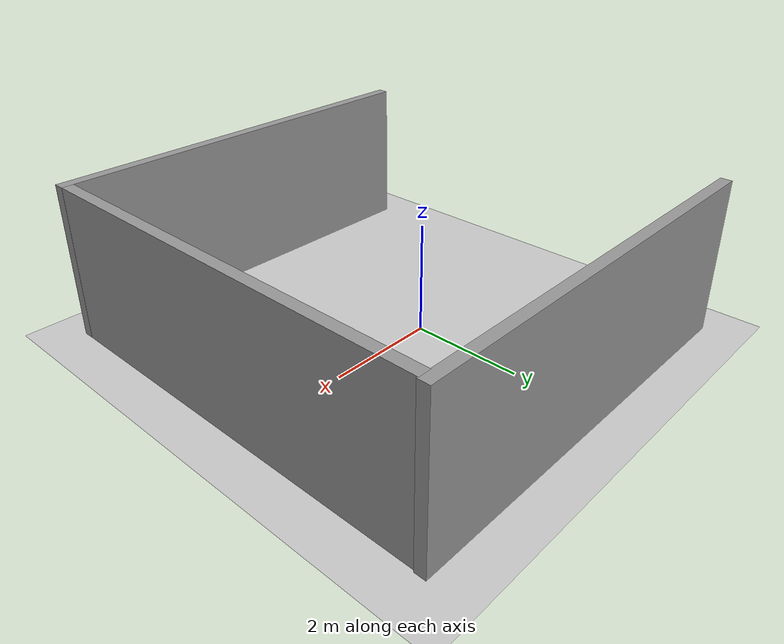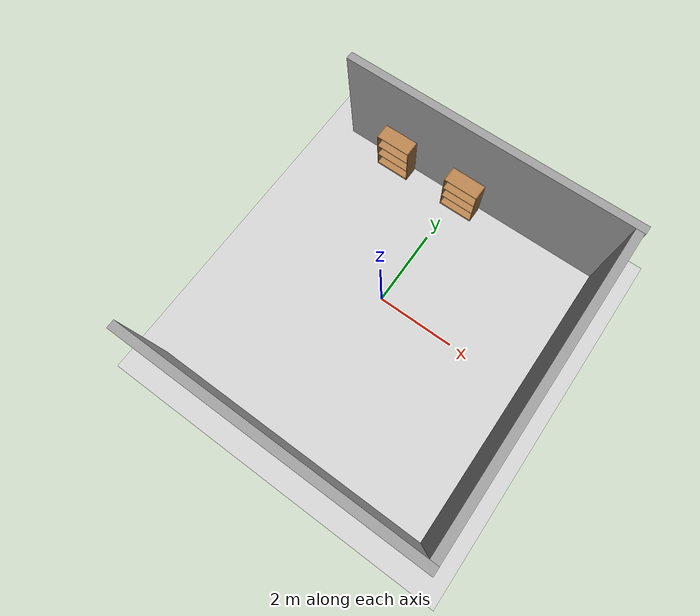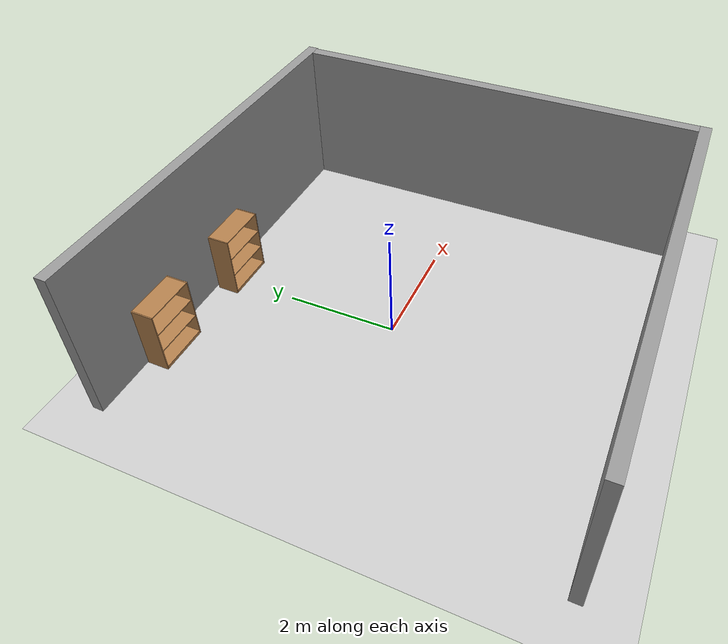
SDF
<sdf version="1.6">
 <world name="default">
  <light name="sun" type="directional">
   <pose>0 0 15 0 -0 0</pose>
   <diffuse>0.8 0.8 0.8 1</diffuse>
   <specular>0.2 0.2 0.2 1</specular>
   <attenuation>
    <range>1000</range>
    <constant>0.9</constant>
    <linear>0.01</linear>
    <quadratic>0.001</quadratic>
   </attenuation>
   <direction>-0.5 0.1 -0.9</direction>
  </light>
  <model name="ground_plane">
   <static>1</static>
   <link name="link">
    <collision name="collision">
     <geometry><plane><normal>0 0 1</normal><size>100 100</size></plane></geometry>
     <surface><friction><ode><mu>100</mu><mu2>50</mu2></ode></friction></surface>
    </collision>
    <visual name="visual">
     <transparency>1</transparency>
     <cast_shadows>0</cast_shadows>
     <geometry><plane><normal>0 0 1</normal><size>100 100</size></plane></geometry>
     <material>
      <script><uri>file://media/materials/scripts/gazebo.material</uri><name>Gazebo/Grey</name></script>
     </material>
    </visual>
   </link>
  </model>
  <gravity>0 0 -9.8</gravity>
  <magnetic_field>6e-06 2.3e-05 -4.2e-05</magnetic_field>
  <atmosphere type="adiabatic"/>
  <physics name="default_physics" default="0" type="ode">
   <max_step_size>0.001</max_step_size>
   <real_time_factor>1</real_time_factor>
   <real_time_update_rate>1000</real_time_update_rate>
  </physics>
  <scene><ambient>0.4 0.4 0.4 1</ambient><background>0.7 0.7 0.7 1</background><shadows>1</shadows></scene>
  <spherical_coordinates>
   <surface_model>EARTH_WGS84</surface_model>
   <latitude_deg>0</latitude_deg>
   <longitude_deg>0</longitude_deg>
   <elevation>0</elevation>
   <heading_deg>0</heading_deg>
  </spherical_coordinates>
  <model name="grey_wall">
   <static>1</static>
   <link name="link">
    <pose>0 0 1.4 0 -0 0</pose>
    <collision name="collision"><geometry><box><size>7.5 0.2 2.8</size></box></geometry></collision>
    <visual name="visual">
     <cast_shadows>0</cast_shadows>
     <geometry><box><size>7.5 0.2 2.8</size></box></geometry>
     <material>
      <script>
       <uri>model://grey_wall/materials/scripts</uri>
       <uri>model://grey_wall/materials/textures</uri>
       <name>vrc/grey_wall</name>
      </script>
     </material>
    </visual>
   </link>
   <pose>0.335627 -4.12565 0 0 -0 0</pose>
  </model>
  <model name="grey_wall_0">
   <static>1</static>
   <link name="link">
    <pose>0 0 1.4 0 -0 0</pose>
    <collision name="collision"><geometry><box><size>7.5 0.2 2.8</size></box></geometry></collision>
    <visual name="visual">
     <cast_shadows>0</cast_shadows>
     <geometry><box><size>7.5 0.2 2.8</size></box></geometry>
     <material>
      <script>
       <uri>model://grey_wall/materials/scripts</uri>
       <uri>model://grey_wall/materials/textures</uri>
       <name>vrc/grey_wall</name>
      </script>
     </material>
    </visual>
   </link>
   <pose>0.358202 3.55842 0 0 -0 0</pose>
  </model>
  <model name="grey_wall_1">
   <static>1</static>
   <link name="link">
    <pose>0 0 1.4 0 -0 0</pose>
    <collision name="collision"><geometry><box><size>7.5 0.2 2.8</size></box></geometry></collision>
    <visual name="visual">
     <cast_shadows>0</cast_shadows>
     <geometry><box><size>7.5 0.2 2.8</size></box></geometry>
     <material>
      <script>
       <uri>model://grey_wall/materials/scripts</uri>
       <uri>model://grey_wall/materials/textures</uri>
       <name>vrc/grey_wall</name>
      </script>
     </material>
    </visual>
   </link>
   <pose>3.98261 -0.277309 0 0 -0 1.5708</pose>
  </model>
  <model name="bookshelf">
   <static>1</static>
   <link name="link">
    <inertial><mass>1</mass></inertial>
    <collision name="back">
     <pose>0 0.005 0.6 0 -0 0</pose>
     <geometry><box><size>0.9 0.01 1.2</size></box></geometry>
    </collision>
    <visual name="visual1">
     <pose>0 0.005 0.6 0 -0 0</pose>
     <geometry><box><size>0.9 0.01 1.2</size></box></geometry>
     <material>
      <script><uri>file://media/materials/scripts/gazebo.material</uri><name>Gazebo/Wood</name></script>
     </material>
    </visual>
    <collision name="left_side">
     <pose>0.45 -0.195 0.6 0 -0 0</pose>
     <geometry><box><size>0.02 0.4 1.2</size></box></geometry>
    </collision>
    <visual name="visual2">
     <pose>0.45 -0.195 0.6 0 -0 0</pose>
     <geometry><box><size>0.02 0.4 1.2</size></box></geometry>
     <material>
      <script><uri>file://media/materials/scripts/gazebo.material</uri><name>Gazebo/Wood</name></script>
     </material>
    </visual>
    <collision name="right_side">
     <pose>-0.45 -0.195 0.6 0 -0 0</pose>
     <geometry><box><size>0.02 0.4 1.2</size></box></geometry>
    </collision>
    <visual name="visual3">
     <pose>-0.45 -0.195 0.6 0 -0 0</pose>
     <geometry><box><size>0.02 0.4 1.2</size></box></geometry>
     <material>
      <script><uri>file://media/materials/scripts/gazebo.material</uri><name>Gazebo/Wood</name></script>
     </material>
    </visual>
    <collision name="bottom">
     <pose>0 -0.195 0.03 0 -0 0</pose>
     <geometry><box><size>0.88 0.4 0.06</size></box></geometry>
    </collision>
    <visual name="visual4">
     <pose>0 -0.195 0.03 0 -0 0</pose>
     <geometry><box><size>0.88 0.4 0.06</size></box></geometry>
     <material>
      <script><uri>file://media/materials/scripts/gazebo.material</uri><name>Gazebo/Wood</name></script>
     </material>
    </visual>
    <collision name="top">
     <pose>0 -0.195 1.19 0 -0 0</pose>
     <geometry><box><size>0.88 0.4 0.02</size></box></geometry>
    </collision>
    <visual name="visual5">
     <pose>0 -0.195 1.19 0 -0 0</pose>
     <geometry><box><size>0.88 0.4 0.02</size></box></geometry>
     <material>
      <script><uri>file://media/materials/scripts/gazebo.material</uri><name>Gazebo/Wood</name></script>
     </material>
    </visual>
    <collision name="low_shelf">
     <pose>0 -0.195 0.43 0 -0 0</pose>
     <geometry><box><size>0.88 0.4 0.02</size></box></geometry>
    </collision>
    <visual name="visual6">
     <pose>0 -0.195 0.43 0 -0 0</pose>
     <geometry><box><size>0.88 0.4 0.02</size></box></geometry>
     <material>
      <script><uri>file://media/materials/scripts/gazebo.material</uri><name>Gazebo/Wood</name></script>
     </material>
    </visual>
    <collision name="high_shelf">
     <pose>0 -0.195 0.8 0 -0 0</pose>
     <geometry><box><size>0.88 0.4 0.02</size></box></geometry>
    </collision>
    <visual name="visual7">
     <pose>0 -0.195 0.8 0 -0 0</pose>
     <geometry><box><size>0.88 0.4 0.02</size></box></geometry>
     <material>
      <script><uri>file://media/materials/scripts/gazebo.material</uri><name>Gazebo/Wood</name></script>
     </material>
    </visual>
   </link>
   <pose>-1.82654 3.44102 0 0 -0 0</pose>
  </model>
  <model name="bookshelf_0">
   <static>1</static>
   <link name="link">
    <inertial><mass>1</mass></inertial>
    <collision name="back">
     <pose>0 0.005 0.6 0 -0 0</pose>
     <geometry><box><size>0.9 0.01 1.2</size></box></geometry>
    </collision>
    <visual name="visual1">
     <pose>0 0.005 0.6 0 -0 0</pose>
     <geometry><box><size>0.9 0.01 1.2</size></box></geometry>
     <material>
      <script><uri>file://media/materials/scripts/gazebo.material</uri><name>Gazebo/Wood</name></script>
     </material>
    </visual>
    <collision name="left_side">
     <pose>0.45 -0.195 0.6 0 -0 0</pose>
     <geometry><box><size>0.02 0.4 1.2</size></box></geometry>
    </collision>
    <visual name="visual2">
     <pose>0.45 -0.195 0.6 0 -0 0</pose>
     <geometry><box><size>0.02 0.4 1.2</size></box></geometry>
     <material>
      <script><uri>file://media/materials/scripts/gazebo.material</uri><name>Gazebo/Wood</name></script>
     </material>
    </visual>
    <collision name="right_side">
     <pose>-0.45 -0.195 0.6 0 -0 0</pose>
     <geometry><box><size>0.02 0.4 1.2</size></box></geometry>
    </collision>
    <visual name="visual3">
     <pose>-0.45 -0.195 0.6 0 -0 0</pose>
     <geometry><box><size>0.02 0.4 1.2</size></box></geometry>
     <material>
      <script><uri>file://media/materials/scripts/gazebo.material</uri><name>Gazebo/Wood</name></script>
     </material>
    </visual>
    <collision name="bottom">
     <pose>0 -0.195 0.03 0 -0 0</pose>
     <geometry><box><size>0.88 0.4 0.06</size></box></geometry>
    </collision>
    <visual name="visual4">
     <pose>0 -0.195 0.03 0 -0 0</pose>
     <geometry><box><size>0.88 0.4 0.06</size></box></geometry>
     <material>
      <script><uri>file://media/materials/scripts/gazebo.material</uri><name>Gazebo/Wood</name></script>
     </material>
    </visual>
    <collision name="top">
     <pose>0 -0.195 1.19 0 -0 0</pose>
     <geometry><box><size>0.88 0.4 0.02</size></box></geometry>
    </collision>
    <visual name="visual5">
     <pose>0 -0.195 1.19 0 -0 0</pose>
     <geometry><box><size>0.88 0.4 0.02</size></box></geometry>
     <material>
      <script><uri>file://media/materials/scripts/gazebo.material</uri><name>Gazebo/Wood</name></script>
     </material>
    </visual>
    <collision name="low_shelf">
     <pose>0 -0.195 0.43 0 -0 0</pose>
     <geometry><box><size>0.88 0.4 0.02</size></box></geometry>
    </collision>
    <visual name="visual6">
     <pose>0 -0.195 0.43 0 -0 0</pose>
     <geometry><box><size>0.88 0.4 0.02</size></box></geometry>
     <material>
      <script><uri>file://media/materials/scripts/gazebo.material</uri><name>Gazebo/Wood</name></script>
     </material>
    </visual>
    <collision name="high_shelf">
     <pose>0 -0.195 0.8 0 -0 0</pose>
     <geometry><box><size>0.88 0.4 0.02</size></box></geometry>
    </collision>
    <visual name="visual7">
     <pose>0 -0.195 0.8 0 -0 0</pose>
     <geometry><box><size>0.88 0.4 0.02</size></box></geometry>
     <material>
      <script><uri>file://media/materials/scripts/gazebo.material</uri><name>Gazebo/Wood</name></script>
     </material>
    </visual>
   </link>
   <pose>0.175941 3.39482 0 0 -0 0</pose>
  </model>
 </world>
</sdf>
